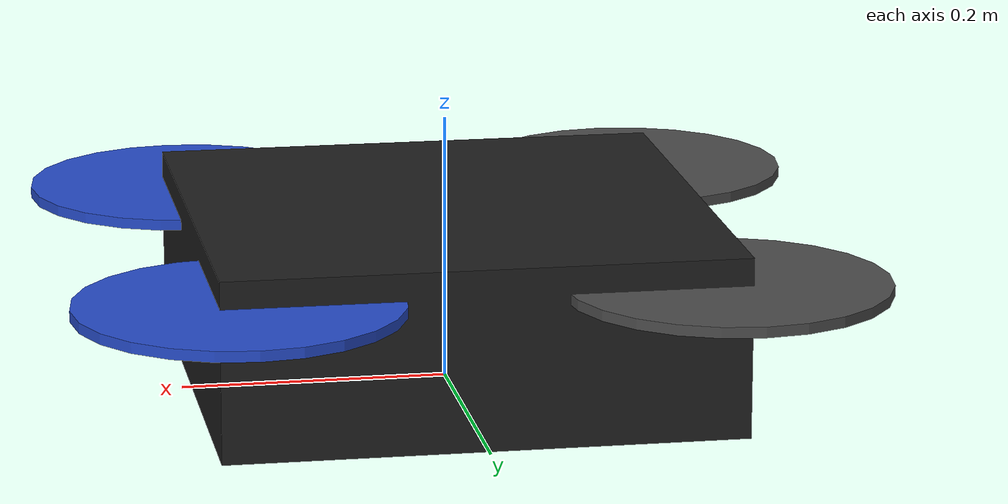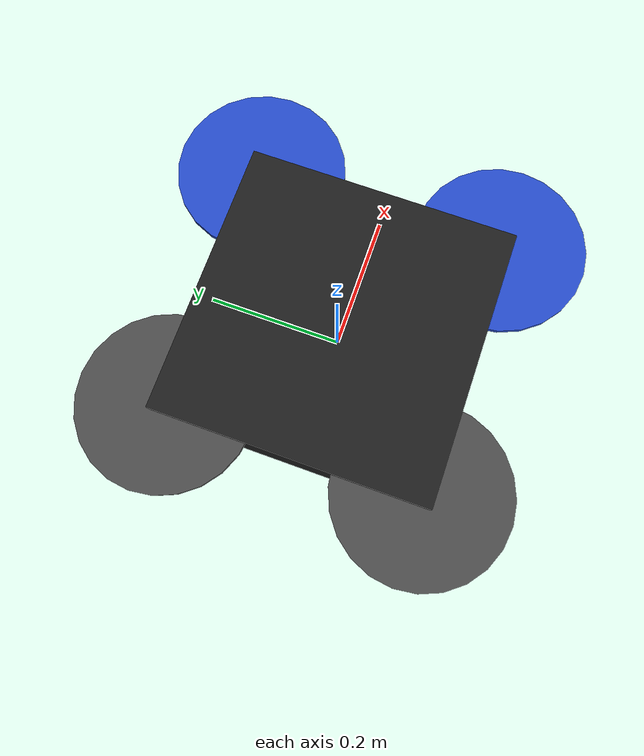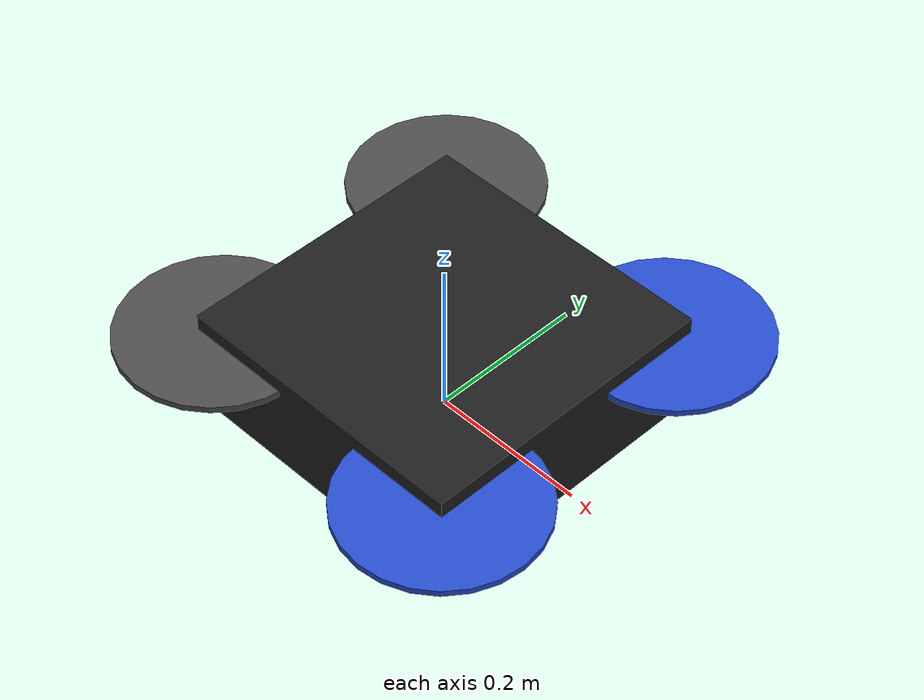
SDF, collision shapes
<?xml version='1.0'?>
<sdf version="1.6" xmlns:xacro='http://ros.org/wiki/xacro'>
  <model name="my_drone">
    <include>
      <uri>model://my_drone</uri>
    </include>

    <!-- plugins -->
    <plugin name="rotor_0_blade_1" filename="libLiftDragPlugin.so">
      <a0>0.3</a0>
      <alpha_stall>1.4</alpha_stall>
      <cla>2.445285552</cla>
      <cda>0.2161442</cda>
      <cma>0.00</cma>
      <cla_stall>-0.025</cla_stall>
      <cda_stall>0.0</cda_stall>
      <cma_stall>0.0</cma_stall>
      <area>0.0024</area>
      <air_density>1.2041</air_density>
      <cp>0.1008 0 0</cp>
      <forward>0 1 0</forward>
      <upward>0 0 1</upward>
      <link_name>my_drone::rotor_0</link_name>
    </plugin>
    <plugin name="rotor_0_blade_2" filename="libLiftDragPlugin.so">
      <a0>0.3</a0>
      <alpha_stall>1.4</alpha_stall>
      <cla>2.445285552</cla>
      <cda>0.2161442</cda>
      <cma>0.00</cma>
      <cla_stall>-0.025</cla_stall>
      <cda_stall>0.0</cda_stall>
      <cma_stall>0.0</cma_stall>
      <area>0.0024</area>
      <air_density>1.2041</air_density>
      <cp>-0.1008 0 0</cp>
      <forward>0 -1 0</forward>
      <upward>0 0 1</upward>
      <link_name>my_drone::rotor_0</link_name>
    </plugin>

    <plugin name="rotor_1_blade_1" filename="libLiftDragPlugin.so">
      <a0>0.3</a0>
      <alpha_stall>1.4</alpha_stall>
      <cla>2.445285552</cla>
      <cda>0.2161442</cda>
      <cma>0.00</cma>
      <cla_stall>-0.025</cla_stall>
      <cda_stall>0.0</cda_stall>
      <cma_stall>0.0</cma_stall>
      <area>0.0024</area>
      <air_density>1.2041</air_density>
      <cp>0.1008 0 0</cp>
      <forward>0 1 0</forward>
      <upward>0 0 1</upward>
      <link_name>my_drone::rotor_1</link_name>
    </plugin>
    <plugin name="rotor_1_blade_2" filename="libLiftDragPlugin.so">
      <a0>0.3</a0>
      <alpha_stall>1.4</alpha_stall>
      <cla>2.445285552</cla>
      <cda>0.2161442</cda>
      <cma>0.00</cma>
      <cla_stall>-0.025</cla_stall>
      <cda_stall>0.0</cda_stall>
      <cma_stall>0.0</cma_stall>
      <area>0.0024</area>
      <air_density>1.2041</air_density>
      <cp>-0.1008 0 0</cp>
      <forward>0 -1 0</forward>
      <upward>0 0 1</upward>
      <link_name>my_drone::rotor_1</link_name>
    </plugin>

    <plugin name="rotor_2_blade_1" filename="libLiftDragPlugin.so">
      <a0>0.3</a0>
      <alpha_stall>1.4</alpha_stall>
      <cla>2.445285552</cla>
      <cda>0.2161442</cda>
      <cma>0.00</cma>
      <cla_stall>-0.025</cla_stall>
      <cda_stall>0.0</cda_stall>
      <cma_stall>0.0</cma_stall>
      <area>0.0024</area>
      <air_density>1.2041</air_density>
      <cp>0.1008 0 0</cp>
      <forward>0 -1 0</forward>
      <upward>0 0 1</upward>
      <link_name>my_drone::rotor_2</link_name>
    </plugin>
    <plugin name="rotor_2_blade_2" filename="libLiftDragPlugin.so">
      <a0>0.3</a0>
      <alpha_stall>1.4</alpha_stall>
      <cla>2.445285552</cla>
      <cda>0.2161442</cda>
      <cma>0.00</cma>
      <cla_stall>-0.025</cla_stall>
      <cda_stall>0.0</cda_stall>
      <cma_stall>0.0</cma_stall>
      <area>0.0024</area>
      <air_density>1.2041</air_density>
      <cp>-0.1008 0 0</cp>
      <forward>0 1 0</forward>
      <upward>0 0 1</upward>
      <link_name>my_drone::rotor_2</link_name>
    </plugin>

    <plugin name="rotor_3_blade_1" filename="libLiftDragPlugin.so">
      <a0>0.3</a0>
      <alpha_stall>1.4</alpha_stall>
      <cla>2.445285552</cla>
      <cda>0.2161442</cda>
      <cma>0.00</cma>
      <cla_stall>-0.025</cla_stall>
      <cda_stall>0.0</cda_stall>
      <cma_stall>0.0</cma_stall>
      <area>0.0024</area>
      <air_density>1.2041</air_density>
      <cp>0.1008 0 0</cp>
      <forward>0 -1 0</forward>
      <upward>0 0 1</upward>
      <link_name>my_drone::rotor_3</link_name>
    </plugin>
    <plugin name="rotor_3_blade_2" filename="libLiftDragPlugin.so">
      <a0>0.3</a0>
      <alpha_stall>1.4</alpha_stall>
      <cla>2.445285552</cla>
      <cda>0.2161442</cda>
      <cma>0.00</cma>
      <cla_stall>-0.025</cla_stall>
      <cda_stall>0.0</cda_stall>
      <cma_stall>0.0</cma_stall>
      <area>0.0024</area>
      <air_density>1.2041</air_density>
      <cp>-0.1008 0 0</cp>
      <forward>0 1 0</forward>
      <upward>0 0 1</upward>
      <link_name>my_drone::rotor_3</link_name>
    </plugin>
    <plugin name="arducopter_plugin" filename="libArduPilotPlugin.so">
      <fdm_addr>127.0.0.1</fdm_addr>
      <fdm_port_in>9002</fdm_port_in>
      <fdm_port_out>9003</fdm_port_out>
      <!--
          Require by APM :
          Only change model and gazebo from XYZ to XY-Z coordinates
      -->
      <modelXYZToAirplaneXForwardZDown>0 0 0 3.141593 0 0</modelXYZToAirplaneXForwardZDown>
      <gazeboXYZToNED>0 0 0 3.141593 0 0</gazeboXYZToNED>
      <imuName>my_drone::my_drone::base_link::imu_sensor</imuName>
      <connectionTimeoutMaxCount>5</connectionTimeoutMaxCount>
      <control channel="0">
      <!--
          incoming control command [0, 1]
          so offset it by 0 to get [0, 1]
          and divide max target by 1.
          offset = 0
          multiplier = 838 max rpm / 1 = 838
        -->
        <type>VELOCITY</type>
        <offset>0</offset>
        <p_gain>0.20</p_gain>
        <i_gain>0</i_gain>
        <d_gain>0</d_gain>
        <i_max>0</i_max>
        <i_min>0</i_min>
        <cmd_max>2.5</cmd_max>
        <cmd_min>-2.5</cmd_min>
        <jointName>my_drone::rotor_0_joint</jointName>
        <multiplier>838</multiplier>
        <controlVelocitySlowdownSim>1</controlVelocitySlowdownSim>
      </control>
      <control channel="1">
        <type>VELOCITY</type>
        <offset>0</offset>
        <p_gain>0.20</p_gain>
        <i_gain>0</i_gain>
        <d_gain>0</d_gain>
        <i_max>0</i_max>
        <i_min>0</i_min>
        <cmd_max>2.5</cmd_max>
        <cmd_min>-2.5</cmd_min>
        <jointName>my_drone::rotor_1_joint</jointName>
        <multiplier>838</multiplier>
        <controlVelocitySlowdownSim>1</controlVelocitySlowdownSim>
      </control>
      <control channel="2">
        <type>VELOCITY</type>
        <offset>0</offset>
        <p_gain>0.20</p_gain>
        <i_gain>0</i_gain>
        <d_gain>0</d_gain>
        <i_max>0</i_max>
        <i_min>0</i_min>
        <cmd_max>2.5</cmd_max>
        <cmd_min>-2.5</cmd_min>
        <jointName>my_drone::rotor_2_joint</jointName>
        <multiplier>-838</multiplier>
        <controlVelocitySlowdownSim>1</controlVelocitySlowdownSim>
      </control>
      <control channel="3">
        <type>VELOCITY</type>
        <offset>0</offset>
        <p_gain>0.20</p_gain>
        <i_gain>0</i_gain>
        <d_gain>0</d_gain>
        <i_max>0</i_max>
        <i_min>0</i_min>
        <cmd_max>2.5</cmd_max>
        <cmd_min>-2.5</cmd_min>
        <jointName>my_drone::rotor_3_joint</jointName>
        <multiplier>-838</multiplier>
        <controlVelocitySlowdownSim>1</controlVelocitySlowdownSim>
      </control>
    </plugin>
  </model>
</sdf>

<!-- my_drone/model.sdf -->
<sdf version='1.6'>
  <model name='my_drone'>
    <pose>0 0 0.087 0 0 0</pose>
    <link name='base_link'>
      <velocity_decay>
        <linear>0.0</linear>
        <angular>0.0</angular>
      </velocity_decay>
      <inertial>
        <pose>0 0 0 0 0 0</pose>
        <mass>0.98</mass>
        <inertia>
          <ixx>0.007675577</ixx>
          <ixy>0</ixy>
          <ixz>0</ixz>
          <iyy>0.008189675</iyy>
          <iyz>0</iyz>
          <izz>0.015049675</izz>
        </inertia>
      </inertial>
      <sensor name="imu_sensor" type="imu">
        <pose>0 0 0 3.141593 0 0</pose>
        <always_on>1</always_on>
        <update_rate>1000.0</update_rate>
      </sensor>
      <collision name='base_link_collision'>
        <pose>0 0 -0.02 0 0 0</pose>
        <geometry>
          <box>
            <size>0.385 0.385 0.135</size>
          </box>
        </geometry>
        <surface>
          <contact>
            <ode>
              <max_vel>100.0</max_vel>
              <min_depth>0.001</min_depth>
            </ode>
          </contact>
          <friction>
            <ode>
              <mu>100000.0</mu>
              <mu2>100000.0</mu2>
            </ode>
          </friction>
        </surface>
      </collision>
      <visual name='base_link_visual'>
        <geometry>
          <mesh>
            <uri>model://my_drone/meshes/iris.dae</uri>
          </mesh>
        </geometry>
        <material>
          <script>
            <name>Gazebo/FlatBlack</name>
            <uri>file://media/materials/scripts/gazebo.material</uri>
          </script>
        </material>
      </visual>
      <visual name='front_left_leg_visual_0'>
        <pose>0.176776695 0.176776695 -0.004 0 0 0</pose>
        <geometry>
          <cylinder>
            <radius>0.005</radius>
            <length>0.045</length>
          </cylinder>
        </geometry>
        <material>
          <script>
            <name>Gazebo/FlatBlack</name>
            <uri>file://media/materials/scripts/gazebo.material</uri>
          </script>
        </material>
      </visual>
      <visual name='front_right_leg_visual_0'>
        <pose>0.176776695 -0.176776695 -0.004 0 0 0</pose>
        <geometry>
          <cylinder>
            <radius>0.005</radius>
            <length>0.045</length>
          </cylinder>
        </geometry>
        <material>
          <script>
            <name>Gazebo/FlatBlack</name>
            <uri>file://media/materials/scripts/gazebo.material</uri>
          </script>
        </material>
      </visual>
      <visual name='rear_left_leg_visual_0'>
        <pose>-0.176776695 0.176776695 -0.004 0 0 0</pose>
        <geometry>
          <cylinder>
            <radius>0.005</radius>
            <length>0.045</length>
          </cylinder>
        </geometry>
        <material>
          <script>
            <name>Gazebo/FlatBlack</name>
            <uri>file://media/materials/scripts/gazebo.material</uri>
          </script>
        </material>
      </visual>
      <visual name='rear_right_leg_visual_0'>
        <pose>-0.176776695 -0.176776695 -0.004 0 0 0</pose>
        <geometry>
          <cylinder>
            <radius>0.005</radius>
            <length>0.045</length>
          </cylinder>
        </geometry>
        <material>
          <script>
            <name>Gazebo/FlatBlack</name>
            <uri>file://media/materials/scripts/gazebo.material</uri>
          </script>
        </material>
      </visual>
      <visual name='front_left_leg_visual_1'>
        <pose>0.176776695 0.176776695 -0.05 0 0 0</pose>
        <geometry>
          <cylinder>
            <radius>0.005</radius>
            <length>0.075</length>
          </cylinder>
        </geometry>
        <material>
          <script>
            <name>Gazebo/FlatBlack</name>
            <uri>file://media/materials/scripts/gazebo.material</uri>
          </script>
        </material>
      </visual>
      <visual name='front_right_leg_visual_1'>
        <pose>0.176776695 -0.176776695 -0.05 0 0 0</pose>
        <geometry>
          <cylinder>
            <radius>0.005</radius>
            <length>0.075</length>
          </cylinder>
        </geometry>
        <material>
          <script>
            <name>Gazebo/FlatBlack</name>
            <uri>file://media/materials/scripts/gazebo.material</uri>
          </script>
        </material>
      </visual>
      <visual name='rear_left_leg_visual_1'>
        <pose>-0.176776695 0.176776695 -0.05 0 0 0</pose>
        <geometry>
          <cylinder>
            <radius>0.005</radius>
            <length>0.075</length>
          </cylinder>
        </geometry>
        <material>
          <script>
            <name>Gazebo/FlatBlack</name>
            <uri>file://media/materials/scripts/gazebo.material</uri>
          </script>
        </material>
      </visual>
      <visual name='rear_right_leg_visual_1'>
        <pose>-0.176776695 -0.176776695 -0.05 0 0 0</pose>
        <geometry>
          <cylinder>
            <radius>0.005</radius>
            <length>0.075</length>
          </cylinder>
        </geometry>
        <material>
          <script>
            <name>Gazebo/FlatBlack</name>
            <uri>file://media/materials/scripts/gazebo.material</uri>
          </script>
        </material>
      </visual>
    </link>

    <link name='rotor_0'>
      <pose>0.176776695 -0.176776695 0.023 0 -0 0</pose>
      <inertial>
        <pose>0 0 0 0 -0 0</pose>
        <mass>0.06</mass>
        <inertia>
          <ixx>0.0000234</ixx>
          <ixy>0</ixy>
          <ixz>0</ixz>
          <iyy>0.00040009</iyy>
          <iyz>0</iyz>
          <izz>0.00040225</izz>
        </inertia>
      </inertial>
      <collision name='rotor_0_collision'>
        <pose>0 0 0 0 -0 0</pose>
        <geometry>
          <cylinder>
            <length>0.008</length>
            <radius>0.12</radius>
          </cylinder>
        </geometry>
        <surface>
          <contact>
            <ode/>
          </contact>
          <friction>
            <ode/>
          </friction>
        </surface>
      </collision>
      <visual name='rotor_0_visual'>
        <pose>0.005 0 0 0 -0 0</pose>
        <geometry>
          <mesh>
            <scale>0.93 0.93 0.93</scale>
            <uri>model://my_drone/meshes/iris_prop_ccw.dae</uri>
          </mesh>
        </geometry>
        <material>
          <script>
            <name>Gazebo/Blue</name>
            <uri>__default__</uri>
          </script>
        </material>
      </visual>
      <gravity>1</gravity>
      <velocity_decay/>
      <self_collide>0</self_collide>
    </link>
    <joint name='rotor_0_joint' type='revolute'>
      <child>rotor_0</child>
      <parent>base_link</parent>
      <axis>
        <xyz>0 0 1</xyz>
        <limit>
          <lower>-1e+16</lower>
          <upper>1e+16</upper>
        </limit>
        <dynamics>
          <damping>0.004</damping>
        </dynamics>
        <use_parent_model_frame>1</use_parent_model_frame>
      </axis>
      <physics>
        <ode>
          <implicit_spring_damper>1</implicit_spring_damper>
        </ode>
      </physics>
    </joint>
    <link name='rotor_1'>
      <pose>-0.176776695 0.176776695 0.023 0 -0 0</pose>
      <inertial>
        <pose>0 0 0 0 -0 0</pose>
        <mass>0.06</mass>
        <inertia>
          <ixx>0.0000234</ixx>
          <ixy>0</ixy>
          <ixz>0</ixz>
          <iyy>0.00040009</iyy>
          <iyz>0</iyz>
          <izz>0.00040225</izz>
        </inertia>
      </inertial>
      <collision name='rotor_1_collision'>
        <pose>0 0 0 0 -0 0</pose>
        <geometry>
          <cylinder>
            <length>0.008</length>
            <radius>0.12</radius>
          </cylinder>
        </geometry>
        <surface>
          <contact>
            <ode/>
          </contact>
          <friction>
            <ode/>
          </friction>
        </surface>
      </collision>
      <visual name='rotor_1_visual'>
        <pose>0.005 0 0 0 -0 0</pose>
        <geometry>
          <mesh>
            <scale>0.93 0.93 0.93</scale>
            <uri>model://my_drone/meshes/iris_prop_ccw.dae</uri>
          </mesh>
        </geometry>
        <material>
          <script>
            <name>Gazebo/DarkGrey</name>
            <uri>__default__</uri>
          </script>
        </material>
      </visual>
      <gravity>1</gravity>
      <velocity_decay/>
      <self_collide>0</self_collide>
    </link>
    <joint name='rotor_1_joint' type='revolute'>
      <child>rotor_1</child>
      <parent>base_link</parent>
      <axis>
        <xyz>0 0 1</xyz>
        <limit>
          <lower>-1e+16</lower>
          <upper>1e+16</upper>
        </limit>
        <dynamics>
          <damping>0.004</damping>
        </dynamics>
        <use_parent_model_frame>1</use_parent_model_frame>
      </axis>
      <physics>
        <ode>
          <implicit_spring_damper>1</implicit_spring_damper>
        </ode>
      </physics>
    </joint>
    <link name='rotor_2'>
      <pose>0.176776695 0.176776695 0.023 0 -0 0</pose>
      <inertial>
        <pose>0 0 0 0 -0 0</pose>
        <mass>0.06</mass>
        <inertia>
          <ixx>0.0000234</ixx>
          <ixy>0</ixy>
          <ixz>0</ixz>
          <iyy>0.00040009</iyy>
          <iyz>0</iyz>
          <izz>0.00040225</izz>
        </inertia>
      </inertial>
      <collision name='rotor_2_collision'>
        <pose>0 0 0 0 -0 0</pose>
        <geometry>
          <cylinder>
            <length>0.008</length>
            <radius>0.12</radius>
          </cylinder>
        </geometry>
        <surface>
          <contact>
            <ode/>
          </contact>
          <friction>
            <ode/>
          </friction>
        </surface>
      </collision>
      <visual name='rotor_2_visual'>
        <pose>0 0 0 0 -0 0</pose>
        <geometry>
          <mesh>
            <scale>0.93 0.93 0.93</scale>
            <uri>model://my_drone/meshes/iris_prop_cw.dae</uri>
          </mesh>
        </geometry>
        <material>
          <script>
            <name>Gazebo/Blue</name>
            <uri>__default__</uri>
          </script>
        </material>
      </visual>
      <gravity>1</gravity>
      <velocity_decay/>
      <self_collide>0</self_collide>
    </link>
    <joint name='rotor_2_joint' type='revolute'>
      <child>rotor_2</child>
      <parent>base_link</parent>
      <axis>
        <xyz>0 0 1</xyz>
        <limit>
          <lower>-1e+16</lower>
          <upper>1e+16</upper>
        </limit>
        <dynamics>
          <damping>0.004</damping>
        </dynamics>
        <use_parent_model_frame>1</use_parent_model_frame>
      </axis>
      <physics>
        <ode>
          <implicit_spring_damper>1</implicit_spring_damper>
        </ode>
      </physics>
    </joint>
    <link name='rotor_3'>
      <pose>-0.176776695 -0.176776695 0.023 0 -0 0</pose>
      <inertial>
        <pose>0 0 0 0 -0 0</pose>
        <mass>0.06</mass>
        <inertia>
          <ixx>0.0000234</ixx>
          <ixy>0</ixy>
          <ixz>0</ixz>
          <iyy>0.00040009</iyy>
          <iyz>0</iyz>
          <izz>0.00040225</izz>
        </inertia>
      </inertial>
      <collision name='rotor_3_collision'>
        <pose>0 0 0 0 -0 0</pose>
        <geometry>
          <cylinder>
            <length>0.008</length>
            <radius>0.12</radius>
          </cylinder>
        </geometry>
        <surface>
          <contact>
            <ode/>
          </contact>
          <friction>
            <ode/>
          </friction>
        </surface>
      </collision>
      <visual name='rotor_3_visual'>
        <pose>0 0 0 0 -0 0</pose>
        <geometry>
          <mesh>
            <scale>0.93 0.93 0.93</scale>
            <uri>model://my_drone/meshes/iris_prop_cw.dae</uri>
          </mesh>
        </geometry>
        <material>
          <script>
            <name>Gazebo/DarkGrey</name>
            <uri>__default__</uri>
          </script>
        </material>
      </visual>
      <gravity>1</gravity>
      <velocity_decay/>
      <self_collide>0</self_collide>
    </link>
    <joint name='rotor_3_joint' type='revolute'>
      <child>rotor_3</child>
      <parent>base_link</parent>
      <axis>
        <xyz>0 0 1</xyz>
        <limit>
          <lower>-1e+16</lower>
          <upper>1e+16</upper>
        </limit>
        <dynamics>
          <damping>0.004</damping>
        </dynamics>
        <use_parent_model_frame>1</use_parent_model_frame>
      </axis>
      <physics>
        <ode>
          <implicit_spring_damper>1</implicit_spring_damper>
        </ode>
      </physics>
    </joint>
    <static>0</static>
  </model>
</sdf>
